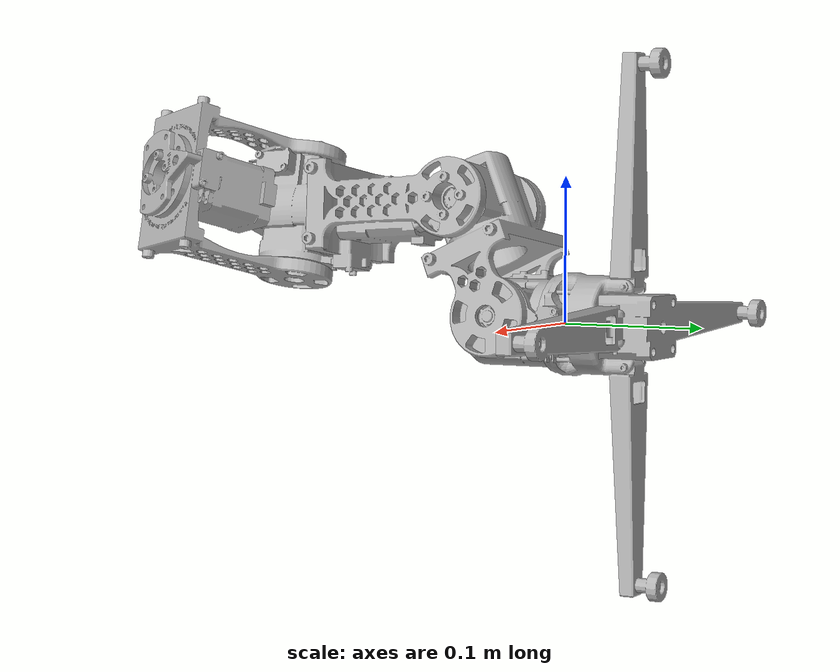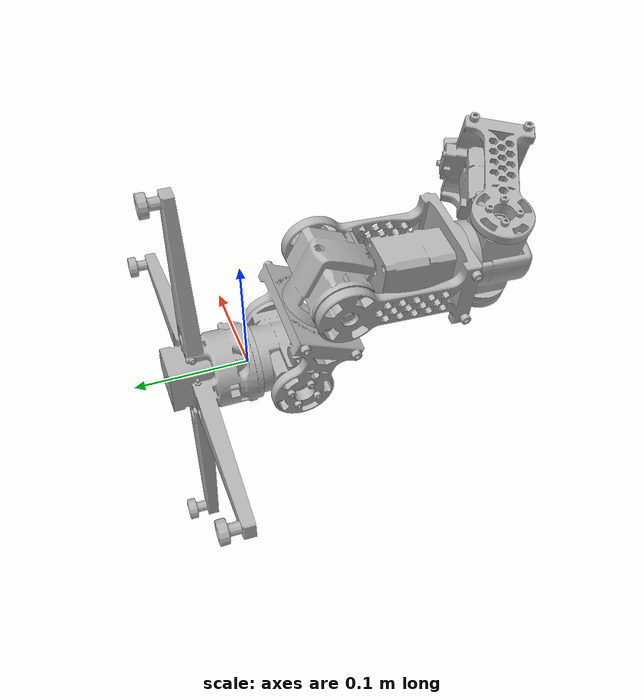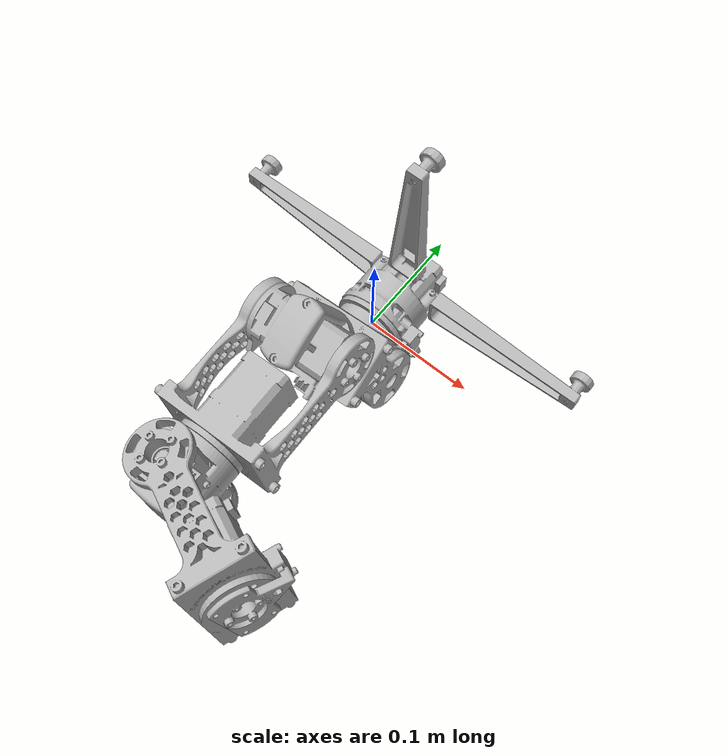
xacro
<?xml version="1.0" ?>
<robot name="Proto" xmlns:xacro="http://www.ros.org/wiki/xacro">

<xacro:include filename="$(find Proto_description)/urdf/materials.xacro" />
<xacro:include filename="$(find Proto_description)/urdf/Proto.trans" />
<xacro:include filename="$(find Proto_description)/urdf/Proto.gazebo" />
<link name="base_link">
  <inertial>
    <origin rpy="0 0 0" xyz="0.0007396603431784532 0.03876764865079532 -8.191333003035142e-05"/>
    <mass value="0.2761464007003608"/>
    <inertia ixx="0.000757" ixy="-4e-06" ixz="-0.0" iyy="0.001272" iyz="-0.0" izz="0.000761"/>
  </inertial>
  <visual>
    <origin rpy="0 0 0" xyz="0 0 0"/>
    <geometry>
      <mesh filename="package://Proto_description/meshes/base_link.stl" scale="0.001 0.001 0.001"/>
    </geometry>
    <material name="silver"/>
  </visual>
  <collision>
    <origin rpy="0 0 0" xyz="0 0 0"/>
    <geometry>
      <mesh filename="package://Proto_description/meshes/base_link.stl" scale="0.001 0.001 0.001"/>
    </geometry>
  </collision>
</link>

<link name="Shoulder_link_v1_1">
  <inertial>
    <origin rpy="0 0 0" xyz="0.0011476357530529047 0.036700053149904696 -0.0013257537103132854"/>
    <mass value="0.19813823002340522"/>
    <inertia ixx="0.0001" ixy="1e-06" ixz="-2e-06" iyy="0.00013" iyz="2e-06" izz="0.000138"/>
  </inertial>
  <visual>
    <origin rpy="0 0 0" xyz="0.0 -0.072416 9.4e-05"/>
    <geometry>
      <mesh filename="package://Proto_description/meshes/Shoulder_link_v1_1.stl" scale="0.001 0.001 0.001"/>
    </geometry>
    <material name="silver"/>
  </visual>
  <collision>
    <origin rpy="0 0 0" xyz="0.0 -0.072416 9.4e-05"/>
    <geometry>
      <mesh filename="package://Proto_description/meshes/Shoulder_link_v1_1.stl" scale="0.001 0.001 0.001"/>
    </geometry>
  </collision>
</link>

<link name="Short_link_v1_1">
  <inertial>
    <origin rpy="0 0 0" xyz="-0.05563727015166487 0.030359599967377346 -0.05590123720325904"/>
    <mass value="0.2810513090866386"/>
    <inertia ixx="0.000386" ixy="4e-06" ixz="-2e-06" iyy="0.000487" iyz="9.4e-05" izz="0.000345"/>
  </inertial>
  <visual>
    <origin rpy="0 0 0" xyz="-0.045255 -0.110466 0.006454"/>
    <geometry>
      <mesh filename="package://Proto_description/meshes/Short_link_v1_1.stl" scale="0.001 0.001 0.001"/>
    </geometry>
    <material name="silver"/>
  </visual>
  <collision>
    <origin rpy="0 0 0" xyz="-0.045255 -0.110466 0.006454"/>
    <geometry>
      <mesh filename="package://Proto_description/meshes/Short_link_v1_1.stl" scale="0.001 0.001 0.001"/>
    </geometry>
  </collision>
</link>

<link name="Long_link_v1_1">
  <inertial>
    <origin rpy="0 0 0" xyz="0.046691605858878785 0.07135735168052673 -0.0017377276229717936"/>
    <mass value="0.2311934009151251"/>
    <inertia ixx="0.00038" ixy="8e-06" ixz="1.9e-05" iyy="0.000243" iyz="-2.2e-05" izz="0.000505"/>
  </inertial>
  <visual>
    <origin rpy="0 0 0" xyz="0.056505 -0.147994 0.073424"/>
    <geometry>
      <mesh filename="package://Proto_description/meshes/Long_link_v1_1.stl" scale="0.001 0.001 0.001"/>
    </geometry>
    <material name="silver"/>
  </visual>
  <collision>
    <origin rpy="0 0 0" xyz="0.056505 -0.147994 0.073424"/>
    <geometry>
      <mesh filename="package://Proto_description/meshes/Long_link_v1_1.stl" scale="0.001 0.001 0.001"/>
    </geometry>
  </collision>
</link>

<link name="Shoulder_link_v1__1__1">
  <inertial>
    <origin rpy="0 0 0" xyz="0.001756405463093377 0.03659132184255115 0.002826605655859113"/>
    <mass value="0.19813823002340522"/>
    <inertia ixx="0.000138" ixy="-1e-06" ixz="-4e-06" iyy="0.00013" iyz="3e-06" izz="0.0001"/>
  </inertial>
  <visual>
    <origin rpy="0 0 0" xyz="0.010398 -0.258093 0.074077"/>
    <geometry>
      <mesh filename="package://Proto_description/meshes/Shoulder_link_v1__1__1.stl" scale="0.001 0.001 0.001"/>
    </geometry>
    <material name="silver"/>
  </visual>
  <collision>
    <origin rpy="0 0 0" xyz="0.010398 -0.258093 0.074077"/>
    <geometry>
      <mesh filename="package://Proto_description/meshes/Shoulder_link_v1__1__1.stl" scale="0.001 0.001 0.001"/>
    </geometry>
  </collision>
</link>

<link name="Long_link_v1__1__1">
  <inertial>
    <origin rpy="0 0 0" xyz="0.04995397852609289 0.029894665405796883 -0.062337393213701034"/>
    <mass value="0.2311934009151251"/>
    <inertia ixx="0.00028" ixy="-8.8e-05" ixz="1.5e-05" iyy="0.000472" iyz="2.8e-05" izz="0.000377"/>
  </inertial>
  <visual>
    <origin rpy="0 0 0" xyz="-0.003232 -0.293729 0.028463"/>
    <geometry>
      <mesh filename="package://Proto_description/meshes/Long_link_v1__1__1.stl" scale="0.001 0.001 0.001"/>
    </geometry>
    <material name="silver"/>
  </visual>
  <collision>
    <origin rpy="0 0 0" xyz="-0.003232 -0.293729 0.028463"/>
    <geometry>
      <mesh filename="package://Proto_description/meshes/Long_link_v1__1__1.stl" scale="0.001 0.001 0.001"/>
    </geometry>
  </collision>
</link>

<link name="Plate_link_v1_1">
  <inertial>
    <origin rpy="0 0 0" xyz="0.008993855210408241 -0.0005342156687411226 -0.0034196496746962957"/>
    <mass value="0.014389707710093135"/>
    <inertia ixx="5e-06" ixy="1e-06" ixz="-0.0" iyy="3e-06" iyz="-0.0" izz="3e-06"/>
  </inertial>
  <visual>
    <origin rpy="0 0 0" xyz="-0.087233 -0.339943 0.09957"/>
    <geometry>
      <mesh filename="package://Proto_description/meshes/Plate_link_v1_1.stl" scale="0.001 0.001 0.001"/>
    </geometry>
    <material name="silver"/>
  </visual>
  <collision>
    <origin rpy="0 0 0" xyz="-0.087233 -0.339943 0.09957"/>
    <geometry>
      <mesh filename="package://Proto_description/meshes/Plate_link_v1_1.stl" scale="0.001 0.001 0.001"/>
    </geometry>
  </collision>
</link>

<joint name="Rev1" type="continuous">
  <origin rpy="0 0 0" xyz="0.0 0.072416 -9.4e-05"/>
  <parent link="base_link"/>
  <child link="Shoulder_link_v1_1"/>
  <axis xyz="-0.0 1.0 0.0"/>
</joint>

<joint name="Rev2" type="continuous">
  <origin rpy="0 0 0" xyz="0.045255 0.03805 -0.00636"/>
  <parent link="Shoulder_link_v1_1"/>
  <child link="Short_link_v1_1"/>
  <axis xyz="-0.990268 -0.0 0.139173"/>
</joint>

<joint name="Rev3" type="continuous">
  <origin rpy="0 0 0" xyz="-0.10176 0.037528 -0.06697"/>
  <parent link="Short_link_v1_1"/>
  <child link="Long_link_v1_1"/>
  <axis xyz="0.990268 0.0 -0.139173"/>
</joint>

<joint name="Rev4" type="continuous">
  <origin rpy="0 0 0" xyz="0.046107 0.110099 -0.000653"/>
  <parent link="Long_link_v1_1"/>
  <child link="Shoulder_link_v1__1__1"/>
  <axis xyz="0.007284 0.99863 0.051827"/>
</joint>

<joint name="Rev5" type="continuous">
  <origin rpy="0 0 0" xyz="0.01363 0.035636 0.045614"/>
  <parent link="Shoulder_link_v1__1__1"/>
  <child link="Long_link_v1__1__1"/>
  <axis xyz="-0.292183 0.051692 -0.954964"/>
</joint>

<joint name="Rev6" type="continuous">
  <origin rpy="0 0 0" xyz="0.084001 0.046214 -0.071107"/>
  <parent link="Long_link_v1__1__1"/>
  <child link="Plate_link_v1_1"/>
  <axis xyz="0.883157 0.397732 -0.248684"/>
</joint>

</robot>

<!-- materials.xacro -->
<robot name="Proto" xmlns:xacro="http://www.ros.org/wiki/xacro" >

<material name="silver">
  <color rgba="0.700 0.700 0.700 1.000"/>
</material>

</robot>

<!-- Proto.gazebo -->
<robot name="Proto" xmlns:xacro="http://www.ros.org/wiki/xacro" >

<xacro:property name="body_color" value="Gazebo/Silver" />

<gazebo>
  <plugin filename="libgazebo_ros_control.so" name="control"/>
</gazebo>
<gazebo reference="base_link">
  <material>${body_color}</material>
  <mu1>0.2</mu1>
  <mu2>0.2</mu2>
  <selfCollide>true</selfCollide>
  <gravity>true</gravity>
</gazebo>

<gazebo reference="Shoulder_link_v1_1">
  <material>${body_color}</material>
  <mu1>0.2</mu1>
  <mu2>0.2</mu2>
  <selfCollide>true</selfCollide>
</gazebo>

<gazebo reference="Short_link_v1_1">
  <material>${body_color}</material>
  <mu1>0.2</mu1>
  <mu2>0.2</mu2>
  <selfCollide>true</selfCollide>
</gazebo>

<gazebo reference="Long_link_v1_1">
  <material>${body_color}</material>
  <mu1>0.2</mu1>
  <mu2>0.2</mu2>
  <selfCollide>true</selfCollide>
</gazebo>

<gazebo reference="Shoulder_link_v1__1__1">
  <material>${body_color}</material>
  <mu1>0.2</mu1>
  <mu2>0.2</mu2>
  <selfCollide>true</selfCollide>
</gazebo>

<gazebo reference="Long_link_v1__1__1">
  <material>${body_color}</material>
  <mu1>0.2</mu1>
  <mu2>0.2</mu2>
  <selfCollide>true</selfCollide>
</gazebo>

<gazebo reference="Plate_link_v1_1">
  <material>${body_color}</material>
  <mu1>0.2</mu1>
  <mu2>0.2</mu2>
  <selfCollide>true</selfCollide>
</gazebo>

</robot>
